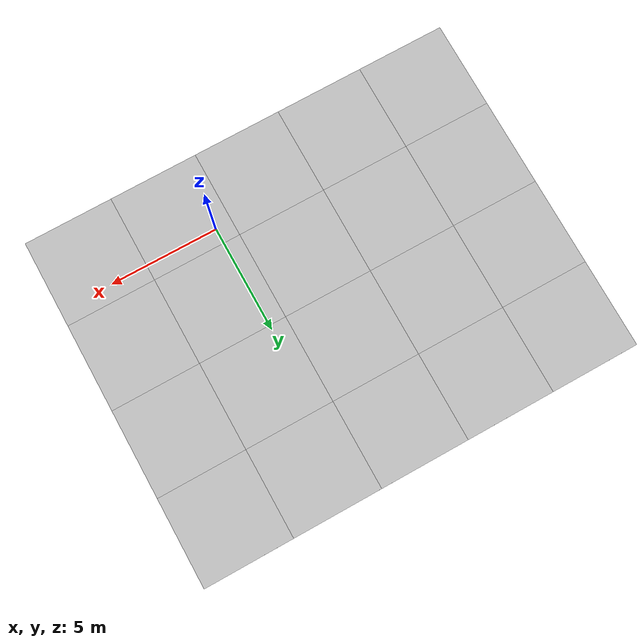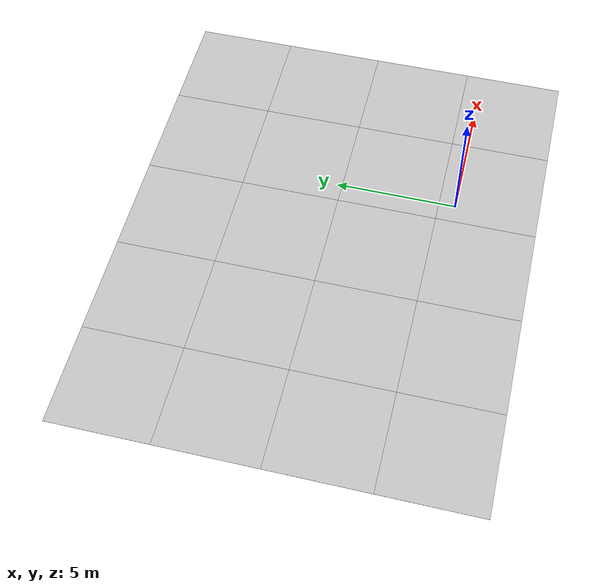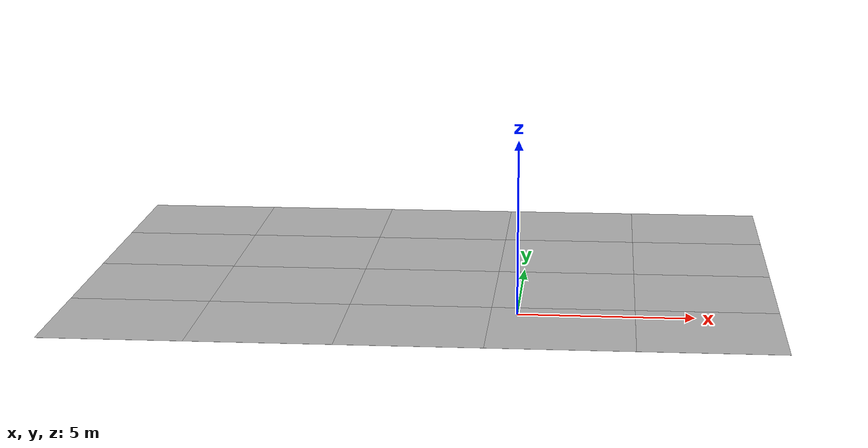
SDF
<sdf version='1.4'>
    <world name='default'>
    <light name='sun_light' type='directional'>
      <pose frame=''>0 0 10 0 -0 0</pose>
      <diffuse>0.5 0.5 0.5 1</diffuse>
      <specular>0.1 0.1 0.1 1</specular>
      <direction>0.1 0.1 -0.9</direction>
      <attenuation>
        <range>20</range>
        <constant>0.5</constant>
        <linear>0.01</linear>
        <quadratic>0.001</quadratic>
      </attenuation>
      <cast_shadows>1</cast_shadows>
    </light>

    <model name='Tile/0-0'>
      <static>1</static>
      <link name='link'>
        <collision name='collision'>
          <geometry>
            <plane>
              <normal>0 0 1</normal>
              <size>4.096 4.096</size>
            </plane>
          </geometry>
          <surface>
            <friction>
              <ode>
                <mu>100</mu>
                <mu2>50</mu2>
              </ode>
              <torsional>
                <ode/>
              </torsional>
            </friction>
            <contact>
              <ode/>
            </contact>
            <bounce/>
          </surface>
          <max_contacts>10</max_contacts>
        </collision>
        <visual name='visual'>
          <cast_shadows>0</cast_shadows>
          <geometry>
            <plane>
              <normal>0 0 1</normal>
              <size>4.096 4.096</size>
            </plane>
          </geometry>
          <material>
            <script>
              <uri>file://materials/scripts</uri>
              <uri>file://materials/textures</uri>
              <name>Tile/5eab350b8220ac9944dbdfa4ac3288c7c17e24c3bf5df0dfcf6173d64dae00a1</name>
            </script>
          </material>
        </visual>
        <self_collide>0</self_collide>
        <enable_wind>0</enable_wind>
        <kinematic>0</kinematic>
      </link>
      <pose frame=''>-11.012249037854804 -1.3519999999999999 0 0 -0 0</pose>
    </model>

    <model name='Tile/0-1'>
      <static>1</static>
      <link name='link'>
        <collision name='collision'>
          <geometry>
            <plane>
              <normal>0 0 1</normal>
              <size>4.096 4.096</size>
            </plane>
          </geometry>
          <surface>
            <friction>
              <ode>
                <mu>100</mu>
                <mu2>50</mu2>
              </ode>
              <torsional>
                <ode/>
              </torsional>
            </friction>
            <contact>
              <ode/>
            </contact>
            <bounce/>
          </surface>
          <max_contacts>10</max_contacts>
        </collision>
        <visual name='visual'>
          <cast_shadows>0</cast_shadows>
          <geometry>
            <plane>
              <normal>0 0 1</normal>
              <size>4.096 4.096</size>
            </plane>
          </geometry>
          <material>
            <script>
              <uri>file://materials/scripts</uri>
              <uri>file://materials/textures</uri>
              <name>Tile/329a14323f854507729804383d2e823034f63070db69f987ee9641bdf8426378</name>
            </script>
          </material>
        </visual>
        <self_collide>0</self_collide>
        <enable_wind>0</enable_wind>
        <kinematic>0</kinematic>
      </link>
      <pose frame=''>-11.012249037854804 2.744 0 0 -0 0</pose>
    </model>

    <model name='Tile/0-2'>
      <static>1</static>
      <link name='link'>
        <collision name='collision'>
          <geometry>
            <plane>
              <normal>0 0 1</normal>
              <size>4.096 4.096</size>
            </plane>
          </geometry>
          <surface>
            <friction>
              <ode>
                <mu>100</mu>
                <mu2>50</mu2>
              </ode>
              <torsional>
                <ode/>
              </torsional>
            </friction>
            <contact>
              <ode/>
            </contact>
            <bounce/>
          </surface>
          <max_contacts>10</max_contacts>
        </collision>
        <visual name='visual'>
          <cast_shadows>0</cast_shadows>
          <geometry>
            <plane>
              <normal>0 0 1</normal>
              <size>4.096 4.096</size>
            </plane>
          </geometry>
          <material>
            <script>
              <uri>file://materials/scripts</uri>
              <uri>file://materials/textures</uri>
              <name>Tile/88f43aaf17cb2f1150140cef670dbdee5a14056d844af3dafc495f6360a173fe</name>
            </script>
          </material>
        </visual>
        <self_collide>0</self_collide>
        <enable_wind>0</enable_wind>
        <kinematic>0</kinematic>
      </link>
      <pose frame=''>-11.012249037854804 6.84 0 0 -0 0</pose>
    </model>

    <model name='Tile/0-3'>
      <static>1</static>
      <link name='link'>
        <collision name='collision'>
          <geometry>
            <plane>
              <normal>0 0 1</normal>
              <size>4.096 4.096</size>
            </plane>
          </geometry>
          <surface>
            <friction>
              <ode>
                <mu>100</mu>
                <mu2>50</mu2>
              </ode>
              <torsional>
                <ode/>
              </torsional>
            </friction>
            <contact>
              <ode/>
            </contact>
            <bounce/>
          </surface>
          <max_contacts>10</max_contacts>
        </collision>
        <visual name='visual'>
          <cast_shadows>0</cast_shadows>
          <geometry>
            <plane>
              <normal>0 0 1</normal>
              <size>4.096 4.096</size>
            </plane>
          </geometry>
          <material>
            <script>
              <uri>file://materials/scripts</uri>
              <uri>file://materials/textures</uri>
              <name>Tile/5eab350b8220ac9944dbdfa4ac3288c7c17e24c3bf5df0dfcf6173d64dae00a1</name>
            </script>
          </material>
        </visual>
        <self_collide>0</self_collide>
        <enable_wind>0</enable_wind>
        <kinematic>0</kinematic>
      </link>
      <pose frame=''>-11.012249037854804 10.936 0 0 -0 0</pose>
    </model>

    <model name='Tile/1-0'>
      <static>1</static>
      <link name='link'>
        <collision name='collision'>
          <geometry>
            <plane>
              <normal>0 0 1</normal>
              <size>4.096 4.096</size>
            </plane>
          </geometry>
          <surface>
            <friction>
              <ode>
                <mu>100</mu>
                <mu2>50</mu2>
              </ode>
              <torsional>
                <ode/>
              </torsional>
            </friction>
            <contact>
              <ode/>
            </contact>
            <bounce/>
          </surface>
          <max_contacts>10</max_contacts>
        </collision>
        <visual name='visual'>
          <cast_shadows>0</cast_shadows>
          <geometry>
            <plane>
              <normal>0 0 1</normal>
              <size>4.096 4.096</size>
            </plane>
          </geometry>
          <material>
            <script>
              <uri>file://materials/scripts</uri>
              <uri>file://materials/textures</uri>
              <name>Tile/5eab350b8220ac9944dbdfa4ac3288c7c17e24c3bf5df0dfcf6173d64dae00a1</name>
            </script>
          </material>
        </visual>
        <self_collide>0</self_collide>
        <enable_wind>0</enable_wind>
        <kinematic>0</kinematic>
      </link>
      <pose frame=''>-6.916249037854804 -1.3519999999999999 0 0 -0 0</pose>
    </model>

    <model name='Tile/1-1'>
      <static>1</static>
      <link name='link'>
        <collision name='collision'>
          <geometry>
            <plane>
              <normal>0 0 1</normal>
              <size>4.096 4.096</size>
            </plane>
          </geometry>
          <surface>
            <friction>
              <ode>
                <mu>100</mu>
                <mu2>50</mu2>
              </ode>
              <torsional>
                <ode/>
              </torsional>
            </friction>
            <contact>
              <ode/>
            </contact>
            <bounce/>
          </surface>
          <max_contacts>10</max_contacts>
        </collision>
        <visual name='visual'>
          <cast_shadows>0</cast_shadows>
          <geometry>
            <plane>
              <normal>0 0 1</normal>
              <size>4.096 4.096</size>
            </plane>
          </geometry>
          <material>
            <script>
              <uri>file://materials/scripts</uri>
              <uri>file://materials/textures</uri>
              <name>Tile/5c70f978ee9bd1f0d01ad09399723263db70c7ab73db422d039dd6c90dc63e54</name>
            </script>
          </material>
        </visual>
        <self_collide>0</self_collide>
        <enable_wind>0</enable_wind>
        <kinematic>0</kinematic>
      </link>
      <pose frame=''>-6.916249037854804 2.744 0 0 -0 0</pose>
    </model>

    <model name='Tile/1-2'>
      <static>1</static>
      <link name='link'>
        <collision name='collision'>
          <geometry>
            <plane>
              <normal>0 0 1</normal>
              <size>4.096 4.096</size>
            </plane>
          </geometry>
          <surface>
            <friction>
              <ode>
                <mu>100</mu>
                <mu2>50</mu2>
              </ode>
              <torsional>
                <ode/>
              </torsional>
            </friction>
            <contact>
              <ode/>
            </contact>
            <bounce/>
          </surface>
          <max_contacts>10</max_contacts>
        </collision>
        <visual name='visual'>
          <cast_shadows>0</cast_shadows>
          <geometry>
            <plane>
              <normal>0 0 1</normal>
              <size>4.096 4.096</size>
            </plane>
          </geometry>
          <material>
            <script>
              <uri>file://materials/scripts</uri>
              <uri>file://materials/textures</uri>
              <name>Tile/668b65bc405ebf839bfbbb561c23e3b4a882418bdf0837a944a9f6b3b78b8552</name>
            </script>
          </material>
        </visual>
        <self_collide>0</self_collide>
        <enable_wind>0</enable_wind>
        <kinematic>0</kinematic>
      </link>
      <pose frame=''>-6.916249037854804 6.84 0 0 -0 0</pose>
    </model>

    <model name='Tile/1-3'>
      <static>1</static>
      <link name='link'>
        <collision name='collision'>
          <geometry>
            <plane>
              <normal>0 0 1</normal>
              <size>4.096 4.096</size>
            </plane>
          </geometry>
          <surface>
            <friction>
              <ode>
                <mu>100</mu>
                <mu2>50</mu2>
              </ode>
              <torsional>
                <ode/>
              </torsional>
            </friction>
            <contact>
              <ode/>
            </contact>
            <bounce/>
          </surface>
          <max_contacts>10</max_contacts>
        </collision>
        <visual name='visual'>
          <cast_shadows>0</cast_shadows>
          <geometry>
            <plane>
              <normal>0 0 1</normal>
              <size>4.096 4.096</size>
            </plane>
          </geometry>
          <material>
            <script>
              <uri>file://materials/scripts</uri>
              <uri>file://materials/textures</uri>
              <name>Tile/5eab350b8220ac9944dbdfa4ac3288c7c17e24c3bf5df0dfcf6173d64dae00a1</name>
            </script>
          </material>
        </visual>
        <self_collide>0</self_collide>
        <enable_wind>0</enable_wind>
        <kinematic>0</kinematic>
      </link>
      <pose frame=''>-6.916249037854804 10.936 0 0 -0 0</pose>
    </model>

    <model name='Tile/2-0'>
      <static>1</static>
      <link name='link'>
        <collision name='collision'>
          <geometry>
            <plane>
              <normal>0 0 1</normal>
              <size>4.096 4.096</size>
            </plane>
          </geometry>
          <surface>
            <friction>
              <ode>
                <mu>100</mu>
                <mu2>50</mu2>
              </ode>
              <torsional>
                <ode/>
              </torsional>
            </friction>
            <contact>
              <ode/>
            </contact>
            <bounce/>
          </surface>
          <max_contacts>10</max_contacts>
        </collision>
        <visual name='visual'>
          <cast_shadows>0</cast_shadows>
          <geometry>
            <plane>
              <normal>0 0 1</normal>
              <size>4.096 4.096</size>
            </plane>
          </geometry>
          <material>
            <script>
              <uri>file://materials/scripts</uri>
              <uri>file://materials/textures</uri>
              <name>Tile/5eab350b8220ac9944dbdfa4ac3288c7c17e24c3bf5df0dfcf6173d64dae00a1</name>
            </script>
          </material>
        </visual>
        <self_collide>0</self_collide>
        <enable_wind>0</enable_wind>
        <kinematic>0</kinematic>
      </link>
      <pose frame=''>-2.820249037854804 -1.3519999999999999 0 0 -0 0</pose>
    </model>

    <model name='Tile/2-1'>
      <static>1</static>
      <link name='link'>
        <collision name='collision'>
          <geometry>
            <plane>
              <normal>0 0 1</normal>
              <size>4.096 4.096</size>
            </plane>
          </geometry>
          <surface>
            <friction>
              <ode>
                <mu>100</mu>
                <mu2>50</mu2>
              </ode>
              <torsional>
                <ode/>
              </torsional>
            </friction>
            <contact>
              <ode/>
            </contact>
            <bounce/>
          </surface>
          <max_contacts>10</max_contacts>
        </collision>
        <visual name='visual'>
          <cast_shadows>0</cast_shadows>
          <geometry>
            <plane>
              <normal>0 0 1</normal>
              <size>4.096 4.096</size>
            </plane>
          </geometry>
          <material>
            <script>
              <uri>file://materials/scripts</uri>
              <uri>file://materials/textures</uri>
              <name>Tile/0ad03839953e37bb025bebce02cb7ed91ceba69978dcc9614ae2b831e2a67aed</name>
            </script>
          </material>
        </visual>
        <self_collide>0</self_collide>
        <enable_wind>0</enable_wind>
        <kinematic>0</kinematic>
      </link>
      <pose frame=''>-2.820249037854804 2.744 0 0 -0 0</pose>
    </model>

    <model name='Tile/2-2'>
      <static>1</static>
      <link name='link'>
        <collision name='collision'>
          <geometry>
            <plane>
              <normal>0 0 1</normal>
              <size>4.096 4.096</size>
            </plane>
          </geometry>
          <surface>
            <friction>
              <ode>
                <mu>100</mu>
                <mu2>50</mu2>
              </ode>
              <torsional>
                <ode/>
              </torsional>
            </friction>
            <contact>
              <ode/>
            </contact>
            <bounce/>
          </surface>
          <max_contacts>10</max_contacts>
        </collision>
        <visual name='visual'>
          <cast_shadows>0</cast_shadows>
          <geometry>
            <plane>
              <normal>0 0 1</normal>
              <size>4.096 4.096</size>
            </plane>
          </geometry>
          <material>
            <script>
              <uri>file://materials/scripts</uri>
              <uri>file://materials/textures</uri>
              <name>Tile/97122f3bc0eb174ff907b82f88d0de0e76cd7b9d6f7d2d201f9468237e8172eb</name>
            </script>
          </material>
        </visual>
        <self_collide>0</self_collide>
        <enable_wind>0</enable_wind>
        <kinematic>0</kinematic>
      </link>
      <pose frame=''>-2.820249037854804 6.84 0 0 -0 0</pose>
    </model>

    <model name='Tile/2-3'>
      <static>1</static>
      <link name='link'>
        <collision name='collision'>
          <geometry>
            <plane>
              <normal>0 0 1</normal>
              <size>4.096 4.096</size>
            </plane>
          </geometry>
          <surface>
            <friction>
              <ode>
                <mu>100</mu>
                <mu2>50</mu2>
              </ode>
              <torsional>
                <ode/>
              </torsional>
            </friction>
            <contact>
              <ode/>
            </contact>
            <bounce/>
          </surface>
          <max_contacts>10</max_contacts>
        </collision>
        <visual name='visual'>
          <cast_shadows>0</cast_shadows>
          <geometry>
            <plane>
              <normal>0 0 1</normal>
              <size>4.096 4.096</size>
            </plane>
          </geometry>
          <material>
            <script>
              <uri>file://materials/scripts</uri>
              <uri>file://materials/textures</uri>
              <name>Tile/5eab350b8220ac9944dbdfa4ac3288c7c17e24c3bf5df0dfcf6173d64dae00a1</name>
            </script>
          </material>
        </visual>
        <self_collide>0</self_collide>
        <enable_wind>0</enable_wind>
        <kinematic>0</kinematic>
      </link>
      <pose frame=''>-2.820249037854804 10.936 0 0 -0 0</pose>
    </model>

    <model name='Tile/3-0'>
      <static>1</static>
      <link name='link'>
        <collision name='collision'>
          <geometry>
            <plane>
              <normal>0 0 1</normal>
              <size>4.096 4.096</size>
            </plane>
          </geometry>
          <surface>
            <friction>
              <ode>
                <mu>100</mu>
                <mu2>50</mu2>
              </ode>
              <torsional>
                <ode/>
              </torsional>
            </friction>
            <contact>
              <ode/>
            </contact>
            <bounce/>
          </surface>
          <max_contacts>10</max_contacts>
        </collision>
        <visual name='visual'>
          <cast_shadows>0</cast_shadows>
          <geometry>
            <plane>
              <normal>0 0 1</normal>
              <size>4.096 4.096</size>
            </plane>
          </geometry>
          <material>
            <script>
              <uri>file://materials/scripts</uri>
              <uri>file://materials/textures</uri>
              <name>Tile/a0dd1b2370b0d8387359f33323da9371e7be9c3a504b187c9b8b5a5f6c54a9e0</name>
            </script>
          </material>
        </visual>
        <self_collide>0</self_collide>
        <enable_wind>0</enable_wind>
        <kinematic>0</kinematic>
      </link>
      <pose frame=''>1.275750962145196 -1.3519999999999999 0 0 -0 0</pose>
    </model>

    <model name='Tile/3-1'>
      <static>1</static>
      <link name='link'>
        <collision name='collision'>
          <geometry>
            <plane>
              <normal>0 0 1</normal>
              <size>4.096 4.096</size>
            </plane>
          </geometry>
          <surface>
            <friction>
              <ode>
                <mu>100</mu>
                <mu2>50</mu2>
              </ode>
              <torsional>
                <ode/>
              </torsional>
            </friction>
            <contact>
              <ode/>
            </contact>
            <bounce/>
          </surface>
          <max_contacts>10</max_contacts>
        </collision>
        <visual name='visual'>
          <cast_shadows>0</cast_shadows>
          <geometry>
            <plane>
              <normal>0 0 1</normal>
              <size>4.096 4.096</size>
            </plane>
          </geometry>
          <material>
            <script>
              <uri>file://materials/scripts</uri>
              <uri>file://materials/textures</uri>
              <name>Tile/b3143d973759056f4ef99e51d7bcb46ef349984ed5d7a95ddd7fe5b3fe0b1aae</name>
            </script>
          </material>
        </visual>
        <self_collide>0</self_collide>
        <enable_wind>0</enable_wind>
        <kinematic>0</kinematic>
      </link>
      <pose frame=''>1.275750962145196 2.744 0 0 -0 0</pose>
    </model>

    <model name='Tile/3-2'>
      <static>1</static>
      <link name='link'>
        <collision name='collision'>
          <geometry>
            <plane>
              <normal>0 0 1</normal>
              <size>4.096 4.096</size>
            </plane>
          </geometry>
          <surface>
            <friction>
              <ode>
                <mu>100</mu>
                <mu2>50</mu2>
              </ode>
              <torsional>
                <ode/>
              </torsional>
            </friction>
            <contact>
              <ode/>
            </contact>
            <bounce/>
          </surface>
          <max_contacts>10</max_contacts>
        </collision>
        <visual name='visual'>
          <cast_shadows>0</cast_shadows>
          <geometry>
            <plane>
              <normal>0 0 1</normal>
              <size>4.096 4.096</size>
            </plane>
          </geometry>
          <material>
            <script>
              <uri>file://materials/scripts</uri>
              <uri>file://materials/textures</uri>
              <name>Tile/efb1c6fcaca268250e5b770984929955467423cf73c6915f74c0f723f31d1305</name>
            </script>
          </material>
        </visual>
        <self_collide>0</self_collide>
        <enable_wind>0</enable_wind>
        <kinematic>0</kinematic>
      </link>
      <pose frame=''>1.275750962145196 6.84 0 0 -0 0</pose>
    </model>

    <model name='Tile/3-3'>
      <static>1</static>
      <link name='link'>
        <collision name='collision'>
          <geometry>
            <plane>
              <normal>0 0 1</normal>
              <size>4.096 4.096</size>
            </plane>
          </geometry>
          <surface>
            <friction>
              <ode>
                <mu>100</mu>
                <mu2>50</mu2>
              </ode>
              <torsional>
                <ode/>
              </torsional>
            </friction>
            <contact>
              <ode/>
            </contact>
            <bounce/>
          </surface>
          <max_contacts>10</max_contacts>
        </collision>
        <visual name='visual'>
          <cast_shadows>0</cast_shadows>
          <geometry>
            <plane>
              <normal>0 0 1</normal>
              <size>4.096 4.096</size>
            </plane>
          </geometry>
          <material>
            <script>
              <uri>file://materials/scripts</uri>
              <uri>file://materials/textures</uri>
              <name>Tile/5eab350b8220ac9944dbdfa4ac3288c7c17e24c3bf5df0dfcf6173d64dae00a1</name>
            </script>
          </material>
        </visual>
        <self_collide>0</self_collide>
        <enable_wind>0</enable_wind>
        <kinematic>0</kinematic>
      </link>
      <pose frame=''>1.275750962145196 10.936 0 0 -0 0</pose>
    </model>

    <model name='Tile/4-0'>
      <static>1</static>
      <link name='link'>
        <collision name='collision'>
          <geometry>
            <plane>
              <normal>0 0 1</normal>
              <size>4.096 4.096</size>
            </plane>
          </geometry>
          <surface>
            <friction>
              <ode>
                <mu>100</mu>
                <mu2>50</mu2>
              </ode>
              <torsional>
                <ode/>
              </torsional>
            </friction>
            <contact>
              <ode/>
            </contact>
            <bounce/>
          </surface>
          <max_contacts>10</max_contacts>
        </collision>
        <visual name='visual'>
          <cast_shadows>0</cast_shadows>
          <geometry>
            <plane>
              <normal>0 0 1</normal>
              <size>4.096 4.096</size>
            </plane>
          </geometry>
          <material>
            <script>
              <uri>file://materials/scripts</uri>
              <uri>file://materials/textures</uri>
              <name>Tile/5eab350b8220ac9944dbdfa4ac3288c7c17e24c3bf5df0dfcf6173d64dae00a1</name>
            </script>
          </material>
        </visual>
        <self_collide>0</self_collide>
        <enable_wind>0</enable_wind>
        <kinematic>0</kinematic>
      </link>
      <pose frame=''>5.371750962145194 -1.3519999999999999 0 0 -0 0</pose>
    </model>

    <model name='Tile/4-1'>
      <static>1</static>
      <link name='link'>
        <collision name='collision'>
          <geometry>
            <plane>
              <normal>0 0 1</normal>
              <size>4.096 4.096</size>
            </plane>
          </geometry>
          <surface>
            <friction>
              <ode>
                <mu>100</mu>
                <mu2>50</mu2>
              </ode>
              <torsional>
                <ode/>
              </torsional>
            </friction>
            <contact>
              <ode/>
            </contact>
            <bounce/>
          </surface>
          <max_contacts>10</max_contacts>
        </collision>
        <visual name='visual'>
          <cast_shadows>0</cast_shadows>
          <geometry>
            <plane>
              <normal>0 0 1</normal>
              <size>4.096 4.096</size>
            </plane>
          </geometry>
          <material>
            <script>
              <uri>file://materials/scripts</uri>
              <uri>file://materials/textures</uri>
              <name>Tile/5eab350b8220ac9944dbdfa4ac3288c7c17e24c3bf5df0dfcf6173d64dae00a1</name>
            </script>
          </material>
        </visual>
        <self_collide>0</self_collide>
        <enable_wind>0</enable_wind>
        <kinematic>0</kinematic>
      </link>
      <pose frame=''>5.371750962145194 2.744 0 0 -0 0</pose>
    </model>

    <model name='Tile/4-2'>
      <static>1</static>
      <link name='link'>
        <collision name='collision'>
          <geometry>
            <plane>
              <normal>0 0 1</normal>
              <size>4.096 4.096</size>
            </plane>
          </geometry>
          <surface>
            <friction>
              <ode>
                <mu>100</mu>
                <mu2>50</mu2>
              </ode>
              <torsional>
                <ode/>
              </torsional>
            </friction>
            <contact>
              <ode/>
            </contact>
            <bounce/>
          </surface>
          <max_contacts>10</max_contacts>
        </collision>
        <visual name='visual'>
          <cast_shadows>0</cast_shadows>
          <geometry>
            <plane>
              <normal>0 0 1</normal>
              <size>4.096 4.096</size>
            </plane>
          </geometry>
          <material>
            <script>
              <uri>file://materials/scripts</uri>
              <uri>file://materials/textures</uri>
              <name>Tile/5eab350b8220ac9944dbdfa4ac3288c7c17e24c3bf5df0dfcf6173d64dae00a1</name>
            </script>
          </material>
        </visual>
        <self_collide>0</self_collide>
        <enable_wind>0</enable_wind>
        <kinematic>0</kinematic>
      </link>
      <pose frame=''>5.371750962145194 6.84 0 0 -0 0</pose>
    </model>

    <model name='Tile/4-3'>
      <static>1</static>
      <link name='link'>
        <collision name='collision'>
          <geometry>
            <plane>
              <normal>0 0 1</normal>
              <size>4.096 4.096</size>
            </plane>
          </geometry>
          <surface>
            <friction>
              <ode>
                <mu>100</mu>
                <mu2>50</mu2>
              </ode>
              <torsional>
                <ode/>
              </torsional>
            </friction>
            <contact>
              <ode/>
            </contact>
            <bounce/>
          </surface>
          <max_contacts>10</max_contacts>
        </collision>
        <visual name='visual'>
          <cast_shadows>0</cast_shadows>
          <geometry>
            <plane>
              <normal>0 0 1</normal>
              <size>4.096 4.096</size>
            </plane>
          </geometry>
          <material>
            <script>
              <uri>file://materials/scripts</uri>
              <uri>file://materials/textures</uri>
              <name>Tile/5eab350b8220ac9944dbdfa4ac3288c7c17e24c3bf5df0dfcf6173d64dae00a1</name>
            </script>
          </material>
        </visual>
        <self_collide>0</self_collide>
        <enable_wind>0</enable_wind>
        <kinematic>0</kinematic>
      </link>
      <pose frame=''>5.371750962145194 10.936 0 0 -0 0</pose>
    </model>
    </world></sdf>
